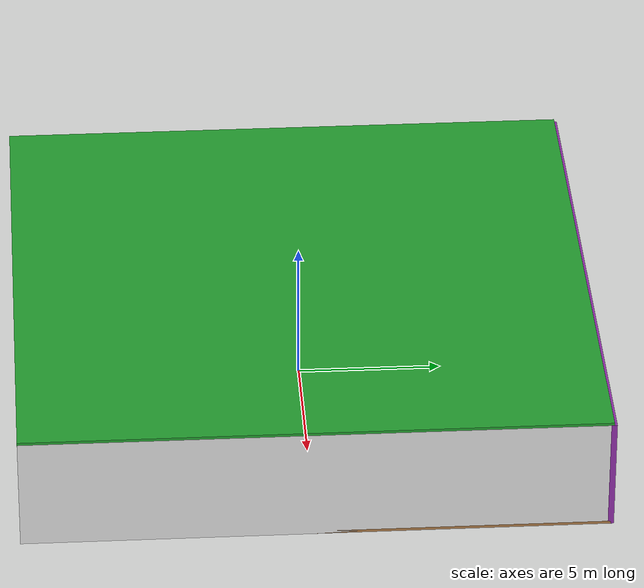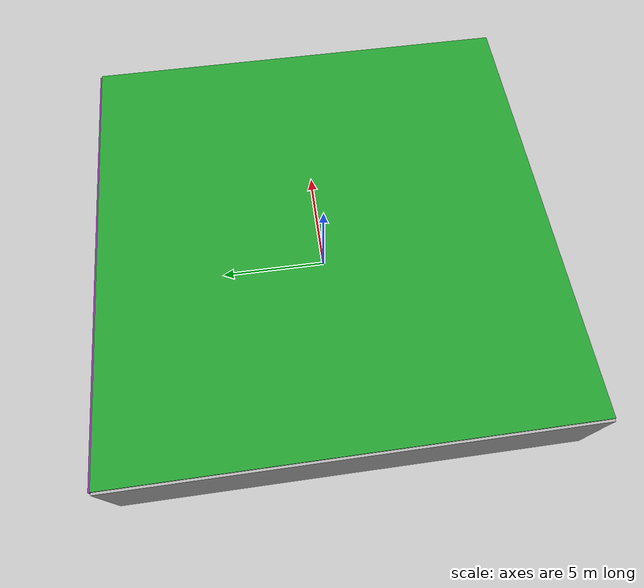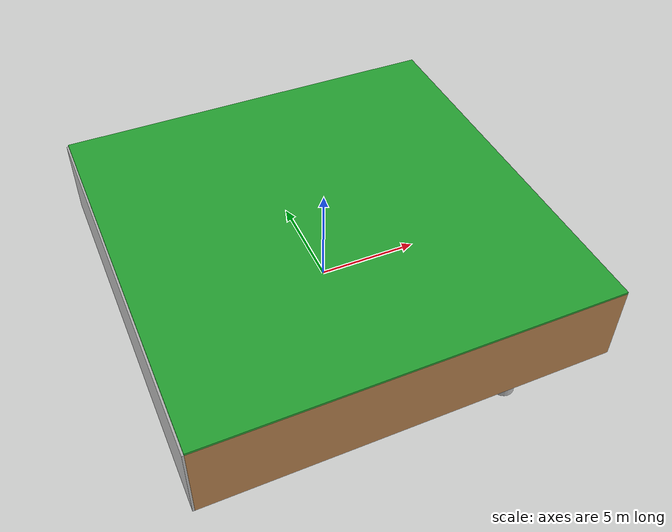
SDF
<sdf version="1.4">
 <world name="default">
  <physics type="ode">
   <max_step_size>0.001</max_step_size>
   <real_time_factor>1</real_time_factor>
   <real_time_update_rate>1000</real_time_update_rate>
   <gravity>0 0 -9.8</gravity>
  </physics>
  <scene><ambient>0.4 0.4 0.4 1</ambient><background>0.7 0.7 0.7 1</background><shadows>1</shadows></scene>
  <model name="Surrounding">
   <static>1</static>
   <link name="Ceiling">
    <collision name="Ceiling_Collision"><geometry><box><size>20 20 0.1</size></box></geometry></collision>
    <visual name="Ceiling_Visual">
     <geometry><box><size>20 20 0.1</size></box></geometry>
     <material>
      <script><uri>file://media/materials/scripts/gazebo.material</uri><name>Gazebo/GreenGlow</name></script>
     </material>
    </visual>
    <pose>0 0 4.05 0 0 0</pose>
   </link>
   <link name="Wall_South">
    <collision name="Wall_South_Collision">
     <geometry><box><size>20 0 4</size></box></geometry>
     <pose>0 0 2 0 -0 0</pose>
    </collision>
    <visual name="Wall_South_Visual">
     <pose>0 0 2 0 -0 0</pose>
     <geometry><box><size>20 0 4</size></box></geometry>
     <material>
      <script><uri>file://media/materials/scripts/gazebo.material</uri><name>Gazebo/WoodPallet</name></script>
     </material>
    </visual>
    <velocity_decay><linear>0</linear><angular>0</angular></velocity_decay>
    <pose>0 -10 0 0 -0 0</pose>
   </link>
   <link name="Wall_East">
    <collision name="Wall_21_Collision">
     <geometry><box><size>20 0 4</size></box></geometry>
     <pose>0 0 2 0 -0 0</pose>
    </collision>
    <visual name="Wall_21_Visual">
     <pose>0 0 2 0 -0 0</pose>
     <geometry><box><size>20 0 4</size></box></geometry>
     <material>
      <script><uri>file://media/materials/scripts/gazebo.material</uri><name>Gazebo/White</name></script>
     </material>
    </visual>
    <velocity_decay><linear>0</linear><angular>0</angular></velocity_decay>
    <pose>10 0 0 0 -0 1.5708</pose>
   </link>
   <link name="Wall_North">
    <collision name="Wall_22_Collision">
     <geometry><box><size>20 0.2 4</size></box></geometry>
     <pose>0 0 2 0 -0 0</pose>
    </collision>
    <visual name="Wall_22_Visual">
     <pose>0 0 2 0 -0 0</pose>
     <geometry><box><size>20 0.2 4</size></box></geometry>
     <material>
      <script><uri>file://media/materials/scripts/gazebo.material</uri><name>Gazebo/Purple</name></script>
     </material>
    </visual>
    <velocity_decay><linear>0</linear><angular>0</angular></velocity_decay>
    <pose>0 10 0 0 -0 0</pose>
   </link>
   <link name="Wall_West">
    <collision name="Wall_23_Collision">
     <geometry><box><size>20 0.2 4</size></box></geometry>
     <pose>0 0 2 0 -0 0</pose>
    </collision>
    <visual name="Wall_23_Visual">
     <pose>0 0 2 0 -0 0</pose>
     <geometry><box><size>20 0.2 4</size></box></geometry>
     <material>
      <script><uri>file://media/materials/scripts/gazebo.material</uri><name>Gazebo/Pioneer2Body</name></script>
     </material>
    </visual>
    <velocity_decay><linear>0</linear><angular>0</angular></velocity_decay>
    <pose>-10 0 0 0 0 -1.5708</pose>
   </link>
   <link name="Ground_link">
    <collision name="collision">
     <pose>0 0 .05 0 -0 0</pose>
     <geometry><box><size>20 20 0.1</size></box></geometry>
    </collision>
    <visual name="visual">
     <pose>0 0 .05 0 -0 0</pose>
     <geometry><box><size>20 20 0.1</size></box></geometry>
     <material>
      <script><uri>file://media/materials/scripts/gazebo.material</uri><name>Gazebo/WoodPallet</name></script>
     </material>
    </visual>
   </link>
   <static>1</static>
  </model>
  <spherical_coordinates>
   <surface_model>EARTH_WGS84</surface_model>
   <latitude_deg>0</latitude_deg>
   <longitude_deg>0</longitude_deg>
   <elevation>0</elevation>
   <heading_deg>0</heading_deg>
  </spherical_coordinates>
  <light name="lightball_0" type="diffuse">
   <diffuse>0.8 0.8 0.8 1</diffuse>
   <specular>0.2 0.2 0.2 1</specular>
   <attenuation>
    <range>100</range>
    <constant>0.7</constant>
    <linear>0.01</linear>
    <quadratic>0.001</quadratic>
   </attenuation>
   <direction>-0.5 0.1 -0.9</direction>
   <pose>0.947306489607 -6.19565574965 1.2703875062 0 0 0</pose>
  </light>
  <light name="lightball_1" type="diffuse">
   <diffuse>0.8 0.8 0.8 1</diffuse>
   <specular>0.2 0.2 0.2 1</specular>
   <attenuation>
    <range>100</range>
    <constant>0.7</constant>
    <linear>0.01</linear>
    <quadratic>0.001</quadratic>
   </attenuation>
   <direction>-0.5 0.1 -0.9</direction>
   <pose>-3.91752955639 -5.61852861667 2.69965204857 0 0 0</pose>
  </light>
  <light name="lightball_2" type="diffuse">
   <diffuse>0.8 0.8 0.8 1</diffuse>
   <specular>0.2 0.2 0.2 1</specular>
   <attenuation>
    <range>100</range>
    <constant>0.7</constant>
    <linear>0.01</linear>
    <quadratic>0.001</quadratic>
   </attenuation>
   <direction>-0.5 0.1 -0.9</direction>
   <pose>-1.91441370021 -0.154829124806 2.11160233834 0 0 0</pose>
  </light>
  <light name="lightball_3" type="diffuse">
   <diffuse>0.8 0.8 0.8 1</diffuse>
   <specular>0.2 0.2 0.2 1</specular>
   <attenuation>
    <range>100</range>
    <constant>0.7</constant>
    <linear>0.01</linear>
    <quadratic>0.001</quadratic>
   </attenuation>
   <direction>-0.5 0.1 -0.9</direction>
   <pose>1.62564403792 -8.00368108455 0.792476805975 0 0 0</pose>
  </light>
  <light name="lightball_4" type="diffuse">
   <diffuse>0.8 0.8 0.8 1</diffuse>
   <specular>0.2 0.2 0.2 1</specular>
   <attenuation>
    <range>100</range>
    <constant>0.7</constant>
    <linear>0.01</linear>
    <quadratic>0.001</quadratic>
   </attenuation>
   <direction>-0.5 0.1 -0.9</direction>
   <pose>-6.48704547951 2.8701847313 0.741397823471 0 0 0</pose>
  </light>
  <light name="lightball_5" type="diffuse">
   <diffuse>0.8 0.8 0.8 1</diffuse>
   <specular>0.2 0.2 0.2 1</specular>
   <attenuation>
    <range>100</range>
    <constant>0.7</constant>
    <linear>0.01</linear>
    <quadratic>0.001</quadratic>
   </attenuation>
   <direction>-0.5 0.1 -0.9</direction>
   <pose>-9.72502927799 -2.13580717728 1.92172610187 0 0 0</pose>
  </light>
  <light name="lightball_6" type="diffuse">
   <diffuse>0.8 0.8 0.8 1</diffuse>
   <specular>0.2 0.2 0.2 1</specular>
   <attenuation>
    <range>100</range>
    <constant>0.7</constant>
    <linear>0.01</linear>
    <quadratic>0.001</quadratic>
   </attenuation>
   <direction>-0.5 0.1 -0.9</direction>
   <pose>-9.75502886924 4.53916014576 2.18656942505 0 0 0</pose>
  </light>
  <light name="lightball_7" type="diffuse">
   <diffuse>0.8 0.8 0.8 1</diffuse>
   <specular>0.2 0.2 0.2 1</specular>
   <attenuation>
    <range>100</range>
    <constant>0.7</constant>
    <linear>0.01</linear>
    <quadratic>0.001</quadratic>
   </attenuation>
   <direction>-0.5 0.1 -0.9</direction>
   <pose>-4.24172655741 -9.87557232273 0.793790406016 0 0 0</pose>
  </light>
  <light name="lightball_8" type="diffuse">
   <diffuse>0.8 0.8 0.8 1</diffuse>
   <specular>0.2 0.2 0.2 1</specular>
   <attenuation>
    <range>100</range>
    <constant>0.7</constant>
    <linear>0.01</linear>
    <quadratic>0.001</quadratic>
   </attenuation>
   <direction>-0.5 0.1 -0.9</direction>
   <pose>-6.93880080578 -6.59142706755 3.51455656018 0 0 0</pose>
  </light>
  <light name="lightball_9" type="diffuse">
   <diffuse>0.8 0.8 0.8 1</diffuse>
   <specular>0.2 0.2 0.2 1</specular>
   <attenuation>
    <range>100</range>
    <constant>0.7</constant>
    <linear>0.01</linear>
    <quadratic>0.001</quadratic>
   </attenuation>
   <direction>-0.5 0.1 -0.9</direction>
   <pose>-6.44356568058 -8.61903034244 2.21312783898 0 0 0</pose>
  </light>
  <light name="lightball_10" type="diffuse">
   <diffuse>0.8 0.8 0.8 1</diffuse>
   <specular>0.2 0.2 0.2 1</specular>
   <attenuation>
    <range>100</range>
    <constant>0.7</constant>
    <linear>0.01</linear>
    <quadratic>0.001</quadratic>
   </attenuation>
   <direction>-0.5 0.1 -0.9</direction>
   <pose>-2.36838494269 0.0854669627889 0.882017308156 0 0 0</pose>
  </light>
  <light name="lightball_11" type="diffuse">
   <diffuse>0.8 0.8 0.8 1</diffuse>
   <specular>0.2 0.2 0.2 1</specular>
   <attenuation>
    <range>100</range>
    <constant>0.7</constant>
    <linear>0.01</linear>
    <quadratic>0.001</quadratic>
   </attenuation>
   <direction>-0.5 0.1 -0.9</direction>
   <pose>6.50318727283 2.69389083936 1.58450604455 0 0 0</pose>
  </light>
  <include><uri>model://table</uri><pose>-4.08706896994 3.90240249324 0 0 0 0.837939028519</pose></include>
  <include><uri>model://cabinet</uri><pose>-1.88110728774 -7.58517471848 0 0 0 1.71004386143</pose></include>
  <include>
   <uri>model://textured_shapes</uri>
   <pose>-1.35874059954 -4.71037715878 0 0 0 0.175356639202</pose>
  </include>
  <include><uri>model://table</uri><pose>1.7251565909 1.33307528735 0 0 0 1.08708377575</pose></include>
  <include><uri>model://cabinet</uri><pose>1.24228404955 4.09360483431 0 0 0 2.01908865153</pose></include>
  <include>
   <uri>model://textured_shapes</uri>
   <pose>5.26039676394 -8.05092312954 0 0 0 2.78489540452</pose>
  </include>
 </world>
</sdf>

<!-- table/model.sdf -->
<sdf version="1.5">
  <model name="table">
    <static>true</static>
    <link name="link">
      <collision name="surface">
        <pose>0 0 1.0 0 0 0</pose>
        <geometry>
          <box>
            <size>1.5 0.8 0.03</size>
          </box>
        </geometry>
        <surface>
          <friction>
            <ode>
              <mu>0.6</mu>
              <mu2>0.6</mu2>
            </ode>
          </friction>
        </surface>
      </collision>
      <visual name="visual1">
        <pose>0 0 1.0 0 0 0</pose>
        <geometry>
          <box>
            <size>1.5 0.8 0.03</size>
          </box>
        </geometry>
        <material>
          <script>
            <uri>model://media/materials/scripts/gazebo.material</uri>
            <name>Gazebo/Wood</name>
          </script>
        </material>
      </visual>
      <collision name="front_left_leg">
        <pose>0.68 0.38 0.5 0 0 0</pose>
        <geometry>
          <cylinder>
            <radius>0.02</radius>
            <length>1.0</length>
          </cylinder>
        </geometry>
      </collision>
      <visual name="front_left_leg">
        <pose>0.68 0.38 0.5 0 0 0</pose>
        <geometry>
          <cylinder>
            <radius>0.02</radius>
            <length>1.0</length>
          </cylinder>
        </geometry>
        <material>
          <script>
            <uri>model://media/materials/scripts/gazebo.material</uri>
            <name>Gazebo/Grey</name>
          </script>
        </material>
      </visual>
      <collision name="front_right_leg">
        <pose>0.68 -0.38 0.5 0 0 0</pose>
        <geometry>
          <cylinder>
            <radius>0.02</radius>
            <length>1.0</length>
          </cylinder>
        </geometry>
      </collision>
      <visual name="front_right_leg">
        <pose>0.68 -0.38 0.5 0 0 0</pose>
        <geometry>
          <cylinder>
            <radius>0.02</radius>
            <length>1.0</length>
          </cylinder>
        </geometry>
        <material>
          <script>
            <uri>model://media/materials/scripts/gazebo.material</uri>
            <name>Gazebo/Grey</name>
          </script>
        </material>
      </visual>
      <collision name="back_right_leg">
        <pose>-0.68 -0.38 0.5 0 0 0</pose>
        <geometry>
          <cylinder>
            <radius>0.02</radius>
            <length>1.0</length>
          </cylinder>
        </geometry>
      </collision>
      <visual name="back_right_leg">
        <pose>-0.68 -0.38 0.5 0 0 0</pose>
        <geometry>
          <cylinder>
            <radius>0.02</radius>
            <length>1.0</length>
          </cylinder>
        </geometry>
        <material>
          <script>
            <uri>model://media/materials/scripts/gazebo.material</uri>
            <name>Gazebo/Grey</name>
          </script>
        </material>
      </visual>
      <collision name="back_left_leg">
        <pose>-0.68 0.38 0.5 0 0 0</pose>
        <geometry>
          <cylinder>
            <radius>0.02</radius>
            <length>1.0</length>
          </cylinder>
        </geometry>
      </collision>
      <visual name="back_left_leg">
        <pose>-0.68 0.38 0.5 0 0 0</pose>
        <geometry>
          <cylinder>
            <radius>0.02</radius>
            <length>1.0</length>
          </cylinder>
        </geometry>
        <material>
          <script>
            <uri>model://media/materials/scripts/gazebo.material</uri>
            <name>Gazebo/Grey</name>
          </script>
        </material>
      </visual>
    </link>
  </model>
</sdf>

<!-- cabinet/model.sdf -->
<sdf version="1.5">
  <model name="cabinet">
    <static>true</static>
    <link name="cabinet_bottom_plate">
      <inertial>
        <pose>0 0 -1 0 0 0</pose>
        <inertia>
          <ixx>2.050000</ixx>
          <ixy>0</ixy>
          <ixz>0</ixz>
          <iyy>2.050000</iyy>
          <iyz>0</iyz>
          <izz>2.050000</izz>
        </inertia>
        <mass>25.000000</mass>
      </inertial>
      <collision name="cabinet_bottom_plate_geom">
        <pose>0 0 0.010000 0 0 0</pose>
        <geometry>
          <box>
            <size>0.450000 0.450000 0.020000</size>
          </box>
        </geometry>
      </collision>
      <visual name="cabinet_bottom_plate_geom_visual">
        <pose>0 0 0.010000 0 0 0</pose>
        <geometry>
          <box>
            <size>0.450000 0.450000 0.020000</size>
          </box>
        </geometry>
        <material>
          <script>
            <uri>model://media/materials/scripts/gazebo.material</uri>
            <name>Gazebo/Wood</name>
          </script>
        </material>
      </visual>
      <collision name="cabinet_bottom_plate_geom_cabinet_back_plate">
        <pose>0.235000 0 0.510000 0 0 0</pose>
        <geometry>
          <box>
            <size>0.020000 0.450000 1.020000</size>
          </box>
        </geometry>
      </collision>
      <visual name="cabinet_bottom_plate_geom_cabinet_back_plate_visual">
        <pose>0.235000 0 0.510000 0 0 0</pose>
        <geometry>
          <box>
            <size>0.020000 0.450000 1.020000</size>
          </box>
        </geometry>
        <material>
          <script>
            <uri>model://media/materials/scripts/gazebo.material</uri>
            <name>Gazebo/Wood</name>
          </script>
        </material>
      </visual>
      <collision name="cabinet_bottom_plate_geom_cabinet_left_plate">
        <pose>0 0.235000 0.510000 0 0 0</pose>
        <geometry>
          <box>
            <size>0.450000 0.020000 1.020000</size>
          </box>
        </geometry>
      </collision>
      <visual name="cabinet_bottom_plate_geom_cabinet_left_plate_visual">
        <pose>0 0.235000 0.510000 0 0 0</pose>
        <geometry>
          <box>
            <size>0.450000 0.020000 1.020000</size>
          </box>
        </geometry>
        <material>
          <script>
            <uri>model://media/materials/scripts/gazebo.material</uri>
            <name>Gazebo/Wood</name>
          </script>
        </material>
      </visual>
      <collision name="cabinet_bottom_plate_geom_cabinet_middle_plate">
        <pose>0 0 0.510000 0 0 0</pose>
        <geometry>
          <box>
            <size>0.450000 0.450000 0.020000</size>
          </box>
        </geometry>
      </collision>
      <visual name="cabinet_bottom_plate_geom_cabinet_middle_plate_visual">
        <pose>0 0 0.510000 0 0 0</pose>
        <geometry>
          <box>
            <size>0.450000 0.450000 0.020000</size>
          </box>
        </geometry>
        <material>
          <script>
            <uri>model://media/materials/scripts/gazebo.material</uri>
            <name>Gazebo/Wood</name>
          </script>
        </material>
      </visual>
      <collision name="cabinet_bottom_plate_geom_cabinet_right_plate">
        <pose>0 -0.235000 0.510000 0 0 0</pose>
        <geometry>
          <box>
            <size>0.450000 0.020000 1.020000</size>
          </box>
        </geometry>
      </collision>
      <visual name="cabinet_bottom_plate_geom_cabinet_right_plate_visual">
        <pose>0 -0.235000 0.510000 0 0 0</pose>
        <geometry>
          <box>
            <size>0.450000 0.020000 1.020000</size>
          </box>
        </geometry>
        <material>
          <script>
            <uri>model://media/materials/scripts/gazebo.material</uri>
            <name>Gazebo/Wood</name>
          </script>
        </material>
      </visual>
      <collision name="cabinet_bottom_plate_geom_cabinet_top_plate">
        <pose>0 0 1.010000 0 0 0</pose>
        <geometry>
          <box>
            <size>0.450000 0.450000 0.020000</size>
          </box>
        </geometry>
      </collision>
      <visual name="cabinet_bottom_plate_geom_cabinet_top_plate_visual">
        <pose>0 0 1.010000 0 0 0</pose>
        <geometry>
          <box>
            <size>0.450000 0.450000 0.020000</size>
          </box>
        </geometry>
        <material>
          <script>
            <uri>model://media/materials/scripts/gazebo.material</uri>
            <name>Gazebo/Wood</name>
          </script>
        </material>
      </visual>
    </link>
  </model>
</sdf>

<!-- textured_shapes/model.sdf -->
<sdf version="1.6">
  <model name="textured_shapes">
    <pose>0 0 0.5 0 0 0</pose>
    <link name="box">
      <pose>0 -1.5 0 0 0 0</pose>
      <collision name="collision">
        <geometry>
          <box>
            <size>1 1 1</size>
          </box>
        </geometry>
      </collision>
      <visual name="visual">
        <geometry>
          <box>
            <size>1 1 1</size>
          </box>
        </geometry>
        <material>
          <script>
            <uri>model://../model_source/models/textured_shapes/materials/scripts</uri>
            <uri>model://../model_source/models/textured_shapes/materials/textures</uri>
            <name>TexturedShape/Squares</name>
          </script>
        </material>
      </visual>
    </link>
    <link name="sphere">
      <collision name="collision">
        <geometry>
          <sphere>
            <radius>0.5</radius>
          </sphere>
        </geometry>
      </collision>
      <visual name="visual">
        <geometry>
          <sphere>
            <radius>0.5</radius>
          </sphere>
        </geometry>
        <material>
          <script>
            <uri>model://../model_source/models/textured_shapes/materials/scripts</uri>
            <uri>model://../model_source/models/textured_shapes/materials/textures</uri>
            <name>TexturedShape/Squares</name>
          </script>
        </material>
      </visual>
    </link>
    <link name="cylinder">
      <pose>0 1.5 0 0 0 0</pose>
      <collision name="collision">
        <geometry>
          <cylinder>
            <radius>0.5</radius>
            <length>1</length>
          </cylinder>
        </geometry>
      </collision>
      <visual name="visual">
        <geometry>
          <cylinder>
            <radius>0.5</radius>
            <length>1</length>
          </cylinder>
        </geometry>
        <material>
          <script>
            <uri>model://../model_source/models/textured_shapes/materials/scripts</uri>
            <uri>model://../model_source/models/textured_shapes/materials/textures</uri>
            <name>TexturedShape/Squares</name>
          </script>
        </material>
      </visual>
    </link>
  </model>
</sdf>
